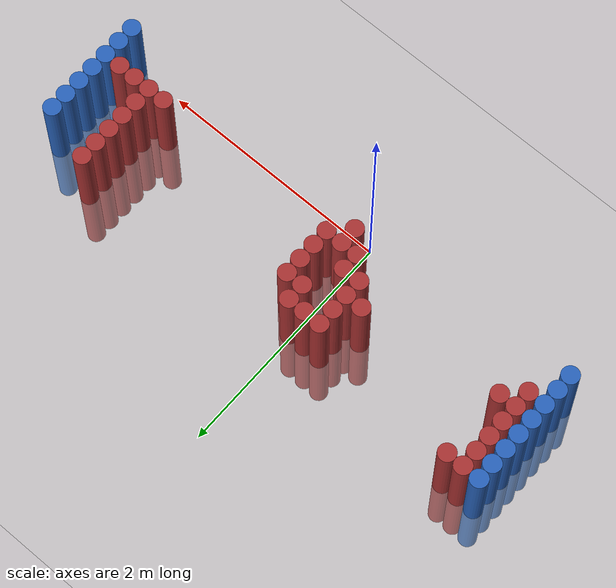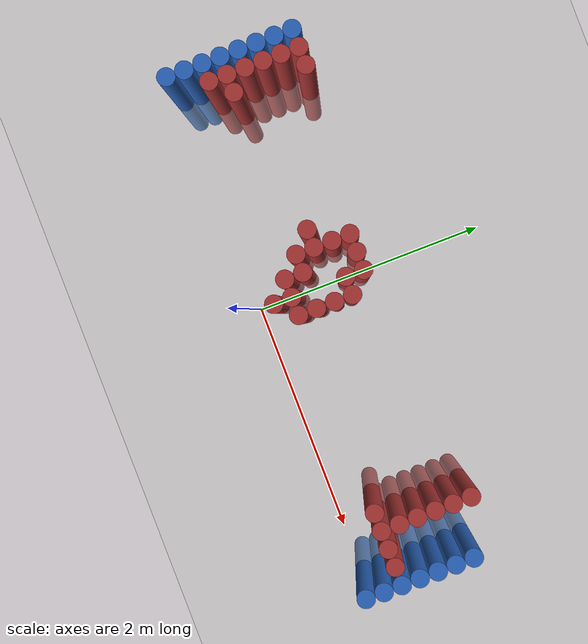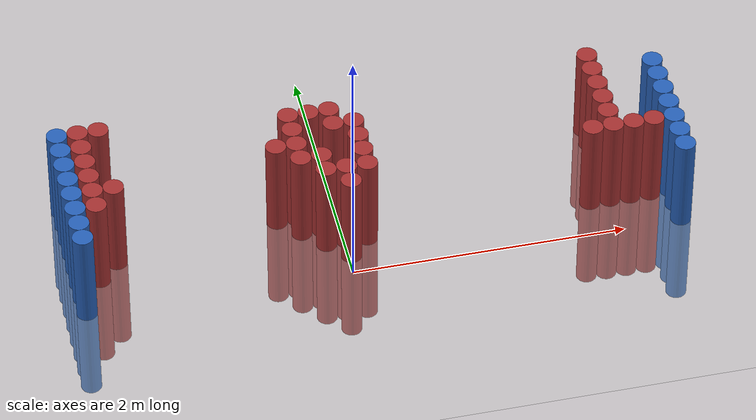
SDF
<sdf version="1.6">
 <world name="default">
  <model name="ground_plane">
   <static>1</static>
   <link name="link">
    <collision name="collision">
     <geometry><plane><normal>0 0 1</normal><size>100 100</size></plane></geometry>
     <surface><friction><ode><mu>100</mu><mu2>50</mu2></ode></friction></surface>
    </collision>
    <visual name="visual">
     <cast_shadows>0</cast_shadows>
     <geometry><plane><normal>0 0 1</normal><size>100 100</size></plane></geometry>
     <material>
      <script><uri>file://media/materials/scripts/gazebo.material</uri><name>Gazebo/Grey</name></script>
     </material>
    </visual>
   </link>
  </model>
  <model name="unit_cylinder_94">
   <static>1</static>
   <pose>2.425000 0.025000 0.000000 0.000000 0.000000 0.000000</pose>
   <link name="link">
    <inertial>
     <mass>1</mass>
     <inertia><ixx>0.145833</ixx><ixy>0</ixy><ixz>0</ixz><iyy>0.145833</iyy><iyz>0</iyz><izz>0.125</izz></inertia>
    </inertial>
    <collision name="collision">
     <geometry><cylinder><radius>0.075000</radius><length>1.5</length></cylinder></geometry>
    </collision>
    <visual name="visual">
     <geometry><cylinder><radius>0.075000</radius><length>1.5</length></cylinder></geometry>
     <material>
      <ambient>0.152000 0.379000 0.720000 1</ambient>
      <diffuse>0.152000 0.379000 0.720000 1</diffuse>
     </material>
     <material>
      <script><name>Gazebo/Grey</name><uri>file://media/materials/scripts/gazebo.material</uri></script>
     </material>
    </visual>
   </link>
  </model>
  <model name="unit_cylinder_95">
   <static>1</static>
   <pose>-1.925000 0.025000 0.000000 0.000000 0.000000 0.000000</pose>
   <link name="link">
    <inertial>
     <mass>1</mass>
     <inertia><ixx>0.145833</ixx><ixy>0</ixy><ixz>0</ixz><iyy>0.145833</iyy><iyz>0</iyz><izz>0.125</izz></inertia>
    </inertial>
    <collision name="collision">
     <geometry><cylinder><radius>0.075000</radius><length>1.5</length></cylinder></geometry>
    </collision>
    <visual name="visual">
     <geometry><cylinder><radius>0.075000</radius><length>1.5</length></cylinder></geometry>
     <material>
      <ambient>0.152000 0.379000 0.720000 1</ambient>
      <diffuse>0.152000 0.379000 0.720000 1</diffuse>
     </material>
     <material>
      <script><name>Gazebo/Grey</name><uri>file://media/materials/scripts/gazebo.material</uri></script>
     </material>
    </visual>
   </link>
  </model>
  <model name="unit_cylinder_96">
   <static>1</static>
   <pose>-1.925000 0.175000 0.000000 0.000000 0.000000 0.000000</pose>
   <link name="link">
    <inertial>
     <mass>1</mass>
     <inertia><ixx>0.145833</ixx><ixy>0</ixy><ixz>0</ixz><iyy>0.145833</iyy><iyz>0</iyz><izz>0.125</izz></inertia>
    </inertial>
    <collision name="collision">
     <geometry><cylinder><radius>0.075000</radius><length>1.5</length></cylinder></geometry>
    </collision>
    <visual name="visual">
     <geometry><cylinder><radius>0.075000</radius><length>1.5</length></cylinder></geometry>
     <material>
      <ambient>0.152000 0.379000 0.720000 1</ambient>
      <diffuse>0.152000 0.379000 0.720000 1</diffuse>
     </material>
     <material>
      <script><name>Gazebo/Grey</name><uri>file://media/materials/scripts/gazebo.material</uri></script>
     </material>
    </visual>
   </link>
  </model>
  <model name="unit_cylinder_97">
   <static>1</static>
   <pose>-1.925000 0.325000 0.000000 0.000000 0.000000 0.000000</pose>
   <link name="link">
    <inertial>
     <mass>1</mass>
     <inertia><ixx>0.145833</ixx><ixy>0</ixy><ixz>0</ixz><iyy>0.145833</iyy><iyz>0</iyz><izz>0.125</izz></inertia>
    </inertial>
    <collision name="collision">
     <geometry><cylinder><radius>0.075000</radius><length>1.5</length></cylinder></geometry>
    </collision>
    <visual name="visual">
     <geometry><cylinder><radius>0.075000</radius><length>1.5</length></cylinder></geometry>
     <material>
      <ambient>0.152000 0.379000 0.720000 1</ambient>
      <diffuse>0.152000 0.379000 0.720000 1</diffuse>
     </material>
     <material>
      <script><name>Gazebo/Grey</name><uri>file://media/materials/scripts/gazebo.material</uri></script>
     </material>
    </visual>
   </link>
  </model>
  <model name="unit_cylinder_98">
   <static>1</static>
   <pose>-1.925000 0.475000 0.000000 0.000000 0.000000 0.000000</pose>
   <link name="link">
    <inertial>
     <mass>1</mass>
     <inertia><ixx>0.145833</ixx><ixy>0</ixy><ixz>0</ixz><iyy>0.145833</iyy><iyz>0</iyz><izz>0.125</izz></inertia>
    </inertial>
    <collision name="collision">
     <geometry><cylinder><radius>0.075000</radius><length>1.5</length></cylinder></geometry>
    </collision>
    <visual name="visual">
     <geometry><cylinder><radius>0.075000</radius><length>1.5</length></cylinder></geometry>
     <material>
      <ambient>0.152000 0.379000 0.720000 1</ambient>
      <diffuse>0.152000 0.379000 0.720000 1</diffuse>
     </material>
     <material>
      <script><name>Gazebo/Grey</name><uri>file://media/materials/scripts/gazebo.material</uri></script>
     </material>
    </visual>
   </link>
  </model>
  <model name="unit_cylinder_99">
   <static>1</static>
   <pose>-1.925000 0.625000 0.000000 0.000000 0.000000 0.000000</pose>
   <link name="link">
    <inertial>
     <mass>1</mass>
     <inertia><ixx>0.145833</ixx><ixy>0</ixy><ixz>0</ixz><iyy>0.145833</iyy><iyz>0</iyz><izz>0.125</izz></inertia>
    </inertial>
    <collision name="collision">
     <geometry><cylinder><radius>0.075000</radius><length>1.5</length></cylinder></geometry>
    </collision>
    <visual name="visual">
     <geometry><cylinder><radius>0.075000</radius><length>1.5</length></cylinder></geometry>
     <material>
      <ambient>0.152000 0.379000 0.720000 1</ambient>
      <diffuse>0.152000 0.379000 0.720000 1</diffuse>
     </material>
     <material>
      <script><name>Gazebo/Grey</name><uri>file://media/materials/scripts/gazebo.material</uri></script>
     </material>
    </visual>
   </link>
  </model>
  <model name="unit_cylinder_100">
   <static>1</static>
   <pose>-1.925000 0.775000 0.000000 0.000000 0.000000 0.000000</pose>
   <link name="link">
    <inertial>
     <mass>1</mass>
     <inertia><ixx>0.145833</ixx><ixy>0</ixy><ixz>0</ixz><iyy>0.145833</iyy><iyz>0</iyz><izz>0.125</izz></inertia>
    </inertial>
    <collision name="collision">
     <geometry><cylinder><radius>0.075000</radius><length>1.5</length></cylinder></geometry>
    </collision>
    <visual name="visual">
     <geometry><cylinder><radius>0.075000</radius><length>1.5</length></cylinder></geometry>
     <material>
      <ambient>0.152000 0.379000 0.720000 1</ambient>
      <diffuse>0.152000 0.379000 0.720000 1</diffuse>
     </material>
     <material>
      <script><name>Gazebo/Grey</name><uri>file://media/materials/scripts/gazebo.material</uri></script>
     </material>
    </visual>
   </link>
  </model>
  <model name="unit_cylinder_101">
   <static>1</static>
   <pose>-1.925000 0.925000 0.000000 0.000000 0.000000 0.000000</pose>
   <link name="link">
    <inertial>
     <mass>1</mass>
     <inertia><ixx>0.145833</ixx><ixy>0</ixy><ixz>0</ixz><iyy>0.145833</iyy><iyz>0</iyz><izz>0.125</izz></inertia>
    </inertial>
    <collision name="collision">
     <geometry><cylinder><radius>0.075000</radius><length>1.5</length></cylinder></geometry>
    </collision>
    <visual name="visual">
     <geometry><cylinder><radius>0.075000</radius><length>1.5</length></cylinder></geometry>
     <material>
      <ambient>0.152000 0.379000 0.720000 1</ambient>
      <diffuse>0.152000 0.379000 0.720000 1</diffuse>
     </material>
     <material>
      <script><name>Gazebo/Grey</name><uri>file://media/materials/scripts/gazebo.material</uri></script>
     </material>
    </visual>
   </link>
  </model>
  <model name="unit_cylinder_102">
   <static>1</static>
   <pose>-1.925000 1.075000 0.000000 0.000000 0.000000 0.000000</pose>
   <link name="link">
    <inertial>
     <mass>1</mass>
     <inertia><ixx>0.145833</ixx><ixy>0</ixy><ixz>0</ixz><iyy>0.145833</iyy><iyz>0</iyz><izz>0.125</izz></inertia>
    </inertial>
    <collision name="collision">
     <geometry><cylinder><radius>0.075000</radius><length>1.5</length></cylinder></geometry>
    </collision>
    <visual name="visual">
     <geometry><cylinder><radius>0.075000</radius><length>1.5</length></cylinder></geometry>
     <material>
      <ambient>0.152000 0.379000 0.720000 1</ambient>
      <diffuse>0.152000 0.379000 0.720000 1</diffuse>
     </material>
     <material>
      <script><name>Gazebo/Grey</name><uri>file://media/materials/scripts/gazebo.material</uri></script>
     </material>
    </visual>
   </link>
  </model>
  <model name="unit_cylinder_126">
   <static>1</static>
   <pose>-1.775000 0.325000 0.000000 0.000000 0.000000 0.000000</pose>
   <link name="link">
    <inertial>
     <mass>1</mass>
     <inertia><ixx>0.145833</ixx><ixy>0</ixy><ixz>0</ixz><iyy>0.145833</iyy><iyz>0</iyz><izz>0.125</izz></inertia>
    </inertial>
    <collision name="collision">
     <geometry><cylinder><radius>0.075000</radius><length>1.5</length></cylinder></geometry>
    </collision>
    <visual name="visual">
     <geometry><cylinder><radius>0.075000</radius><length>1.5</length></cylinder></geometry>
     <material>
      <ambient>0.648000 0.192000 0.192000 1</ambient>
      <diffuse>0.648000 0.192000 0.192000 1</diffuse>
     </material>
     <material>
      <script><name>Gazebo/Grey</name><uri>file://media/materials/scripts/gazebo.material</uri></script>
     </material>
    </visual>
   </link>
  </model>
  <model name="unit_cylinder_127">
   <static>1</static>
   <pose>-1.775000 0.475000 0.000000 0.000000 0.000000 0.000000</pose>
   <link name="link">
    <inertial>
     <mass>1</mass>
     <inertia><ixx>0.145833</ixx><ixy>0</ixy><ixz>0</ixz><iyy>0.145833</iyy><iyz>0</iyz><izz>0.125</izz></inertia>
    </inertial>
    <collision name="collision">
     <geometry><cylinder><radius>0.075000</radius><length>1.5</length></cylinder></geometry>
    </collision>
    <visual name="visual">
     <geometry><cylinder><radius>0.075000</radius><length>1.5</length></cylinder></geometry>
     <material>
      <ambient>0.648000 0.192000 0.192000 1</ambient>
      <diffuse>0.648000 0.192000 0.192000 1</diffuse>
     </material>
     <material>
      <script><name>Gazebo/Grey</name><uri>file://media/materials/scripts/gazebo.material</uri></script>
     </material>
    </visual>
   </link>
  </model>
  <model name="unit_cylinder_128">
   <static>1</static>
   <pose>-1.775000 0.625000 0.000000 0.000000 0.000000 0.000000</pose>
   <link name="link">
    <inertial>
     <mass>1</mass>
     <inertia><ixx>0.145833</ixx><ixy>0</ixy><ixz>0</ixz><iyy>0.145833</iyy><iyz>0</iyz><izz>0.125</izz></inertia>
    </inertial>
    <collision name="collision">
     <geometry><cylinder><radius>0.075000</radius><length>1.5</length></cylinder></geometry>
    </collision>
    <visual name="visual">
     <geometry><cylinder><radius>0.075000</radius><length>1.5</length></cylinder></geometry>
     <material>
      <ambient>0.648000 0.192000 0.192000 1</ambient>
      <diffuse>0.648000 0.192000 0.192000 1</diffuse>
     </material>
     <material>
      <script><name>Gazebo/Grey</name><uri>file://media/materials/scripts/gazebo.material</uri></script>
     </material>
    </visual>
   </link>
  </model>
  <model name="unit_cylinder_129">
   <static>1</static>
   <pose>-1.775000 0.775000 0.000000 0.000000 0.000000 0.000000</pose>
   <link name="link">
    <inertial>
     <mass>1</mass>
     <inertia><ixx>0.145833</ixx><ixy>0</ixy><ixz>0</ixz><iyy>0.145833</iyy><iyz>0</iyz><izz>0.125</izz></inertia>
    </inertial>
    <collision name="collision">
     <geometry><cylinder><radius>0.075000</radius><length>1.5</length></cylinder></geometry>
    </collision>
    <visual name="visual">
     <geometry><cylinder><radius>0.075000</radius><length>1.5</length></cylinder></geometry>
     <material>
      <ambient>0.648000 0.192000 0.192000 1</ambient>
      <diffuse>0.648000 0.192000 0.192000 1</diffuse>
     </material>
     <material>
      <script><name>Gazebo/Grey</name><uri>file://media/materials/scripts/gazebo.material</uri></script>
     </material>
    </visual>
   </link>
  </model>
  <model name="unit_cylinder_130">
   <static>1</static>
   <pose>-1.775000 0.925000 0.000000 0.000000 0.000000 0.000000</pose>
   <link name="link">
    <inertial>
     <mass>1</mass>
     <inertia><ixx>0.145833</ixx><ixy>0</ixy><ixz>0</ixz><iyy>0.145833</iyy><iyz>0</iyz><izz>0.125</izz></inertia>
    </inertial>
    <collision name="collision">
     <geometry><cylinder><radius>0.075000</radius><length>1.5</length></cylinder></geometry>
    </collision>
    <visual name="visual">
     <geometry><cylinder><radius>0.075000</radius><length>1.5</length></cylinder></geometry>
     <material>
      <ambient>0.648000 0.192000 0.192000 1</ambient>
      <diffuse>0.648000 0.192000 0.192000 1</diffuse>
     </material>
     <material>
      <script><name>Gazebo/Grey</name><uri>file://media/materials/scripts/gazebo.material</uri></script>
     </material>
    </visual>
   </link>
  </model>
  <model name="unit_cylinder_131">
   <static>1</static>
   <pose>-1.775000 1.075000 0.000000 0.000000 0.000000 0.000000</pose>
   <link name="link">
    <inertial>
     <mass>1</mass>
     <inertia><ixx>0.145833</ixx><ixy>0</ixy><ixz>0</ixz><iyy>0.145833</iyy><iyz>0</iyz><izz>0.125</izz></inertia>
    </inertial>
    <collision name="collision">
     <geometry><cylinder><radius>0.075000</radius><length>1.5</length></cylinder></geometry>
    </collision>
    <visual name="visual">
     <geometry><cylinder><radius>0.075000</radius><length>1.5</length></cylinder></geometry>
     <material>
      <ambient>0.648000 0.192000 0.192000 1</ambient>
      <diffuse>0.648000 0.192000 0.192000 1</diffuse>
     </material>
     <material>
      <script><name>Gazebo/Grey</name><uri>file://media/materials/scripts/gazebo.material</uri></script>
     </material>
    </visual>
   </link>
  </model>
  <model name="unit_cylinder_150">
   <static>1</static>
   <pose>-1.625000 0.475000 0.000000 0.000000 0.000000 0.000000</pose>
   <link name="link">
    <inertial>
     <mass>1</mass>
     <inertia><ixx>0.145833</ixx><ixy>0</ixy><ixz>0</ixz><iyy>0.145833</iyy><iyz>0</iyz><izz>0.125</izz></inertia>
    </inertial>
    <collision name="collision">
     <geometry><cylinder><radius>0.075000</radius><length>1.5</length></cylinder></geometry>
    </collision>
    <visual name="visual">
     <geometry><cylinder><radius>0.075000</radius><length>1.5</length></cylinder></geometry>
     <material>
      <ambient>0.648000 0.192000 0.192000 1</ambient>
      <diffuse>0.648000 0.192000 0.192000 1</diffuse>
     </material>
     <material>
      <script><name>Gazebo/Grey</name><uri>file://media/materials/scripts/gazebo.material</uri></script>
     </material>
    </visual>
   </link>
  </model>
  <model name="unit_cylinder_151">
   <static>1</static>
   <pose>-1.625000 1.075000 0.000000 0.000000 0.000000 0.000000</pose>
   <link name="link">
    <inertial>
     <mass>1</mass>
     <inertia><ixx>0.145833</ixx><ixy>0</ixy><ixz>0</ixz><iyy>0.145833</iyy><iyz>0</iyz><izz>0.125</izz></inertia>
    </inertial>
    <collision name="collision">
     <geometry><cylinder><radius>0.075000</radius><length>1.5</length></cylinder></geometry>
    </collision>
    <visual name="visual">
     <geometry><cylinder><radius>0.075000</radius><length>1.5</length></cylinder></geometry>
     <material>
      <ambient>0.648000 0.192000 0.192000 1</ambient>
      <diffuse>0.648000 0.192000 0.192000 1</diffuse>
     </material>
     <material>
      <script><name>Gazebo/Grey</name><uri>file://media/materials/scripts/gazebo.material</uri></script>
     </material>
    </visual>
   </link>
  </model>
  <model name="unit_cylinder_169">
   <static>1</static>
   <pose>-0.425000 0.625000 0.000000 0.000000 0.000000 0.000000</pose>
   <link name="link">
    <inertial>
     <mass>1</mass>
     <inertia><ixx>0.145833</ixx><ixy>0</ixy><ixz>0</ixz><iyy>0.145833</iyy><iyz>0</iyz><izz>0.125</izz></inertia>
    </inertial>
    <collision name="collision">
     <geometry><cylinder><radius>0.075000</radius><length>1.5</length></cylinder></geometry>
    </collision>
    <visual name="visual">
     <geometry><cylinder><radius>0.075000</radius><length>1.5</length></cylinder></geometry>
     <material>
      <ambient>0.648000 0.192000 0.192000 1</ambient>
      <diffuse>0.648000 0.192000 0.192000 1</diffuse>
     </material>
     <material>
      <script><name>Gazebo/Grey</name><uri>file://media/materials/scripts/gazebo.material</uri></script>
     </material>
    </visual>
   </link>
  </model>
  <model name="unit_cylinder_170">
   <static>1</static>
   <pose>-0.275000 0.475000 0.000000 0.000000 0.000000 0.000000</pose>
   <link name="link">
    <inertial>
     <mass>1</mass>
     <inertia><ixx>0.145833</ixx><ixy>0</ixy><ixz>0</ixz><iyy>0.145833</iyy><iyz>0</iyz><izz>0.125</izz></inertia>
    </inertial>
    <collision name="collision">
     <geometry><cylinder><radius>0.075000</radius><length>1.5</length></cylinder></geometry>
    </collision>
    <visual name="visual">
     <geometry><cylinder><radius>0.075000</radius><length>1.5</length></cylinder></geometry>
     <material>
      <ambient>0.648000 0.192000 0.192000 1</ambient>
      <diffuse>0.648000 0.192000 0.192000 1</diffuse>
     </material>
     <material>
      <script><name>Gazebo/Grey</name><uri>file://media/materials/scripts/gazebo.material</uri></script>
     </material>
    </visual>
   </link>
  </model>
  <model name="unit_cylinder_171">
   <static>1</static>
   <pose>-0.275000 0.625000 0.000000 0.000000 0.000000 0.000000</pose>
   <link name="link">
    <inertial>
     <mass>1</mass>
     <inertia><ixx>0.145833</ixx><ixy>0</ixy><ixz>0</ixz><iyy>0.145833</iyy><iyz>0</iyz><izz>0.125</izz></inertia>
    </inertial>
    <collision name="collision">
     <geometry><cylinder><radius>0.075000</radius><length>1.5</length></cylinder></geometry>
    </collision>
    <visual name="visual">
     <geometry><cylinder><radius>0.075000</radius><length>1.5</length></cylinder></geometry>
     <material>
      <ambient>0.648000 0.192000 0.192000 1</ambient>
      <diffuse>0.648000 0.192000 0.192000 1</diffuse>
     </material>
     <material>
      <script><name>Gazebo/Grey</name><uri>file://media/materials/scripts/gazebo.material</uri></script>
     </material>
    </visual>
   </link>
  </model>
  <model name="unit_cylinder_172">
   <static>1</static>
   <pose>-0.275000 0.775000 0.000000 0.000000 0.000000 0.000000</pose>
   <link name="link">
    <inertial>
     <mass>1</mass>
     <inertia><ixx>0.145833</ixx><ixy>0</ixy><ixz>0</ixz><iyy>0.145833</iyy><iyz>0</iyz><izz>0.125</izz></inertia>
    </inertial>
    <collision name="collision">
     <geometry><cylinder><radius>0.075000</radius><length>1.5</length></cylinder></geometry>
    </collision>
    <visual name="visual">
     <geometry><cylinder><radius>0.075000</radius><length>1.5</length></cylinder></geometry>
     <material>
      <ambient>0.648000 0.192000 0.192000 1</ambient>
      <diffuse>0.648000 0.192000 0.192000 1</diffuse>
     </material>
     <material>
      <script><name>Gazebo/Grey</name><uri>file://media/materials/scripts/gazebo.material</uri></script>
     </material>
    </visual>
   </link>
  </model>
  <model name="unit_cylinder_173">
   <static>1</static>
   <pose>-0.275000 0.925000 0.000000 0.000000 0.000000 0.000000</pose>
   <link name="link">
    <inertial>
     <mass>1</mass>
     <inertia><ixx>0.145833</ixx><ixy>0</ixy><ixz>0</ixz><iyy>0.145833</iyy><iyz>0</iyz><izz>0.125</izz></inertia>
    </inertial>
    <collision name="collision">
     <geometry><cylinder><radius>0.075000</radius><length>1.5</length></cylinder></geometry>
    </collision>
    <visual name="visual">
     <geometry><cylinder><radius>0.075000</radius><length>1.5</length></cylinder></geometry>
     <material>
      <ambient>0.648000 0.192000 0.192000 1</ambient>
      <diffuse>0.648000 0.192000 0.192000 1</diffuse>
     </material>
     <material>
      <script><name>Gazebo/Grey</name><uri>file://media/materials/scripts/gazebo.material</uri></script>
     </material>
    </visual>
   </link>
  </model>
  <model name="unit_cylinder_174">
   <static>1</static>
   <pose>-0.125000 0.325000 0.000000 0.000000 0.000000 0.000000</pose>
   <link name="link">
    <inertial>
     <mass>1</mass>
     <inertia><ixx>0.145833</ixx><ixy>0</ixy><ixz>0</ixz><iyy>0.145833</iyy><iyz>0</iyz><izz>0.125</izz></inertia>
    </inertial>
    <collision name="collision">
     <geometry><cylinder><radius>0.075000</radius><length>1.5</length></cylinder></geometry>
    </collision>
    <visual name="visual">
     <geometry><cylinder><radius>0.075000</radius><length>1.5</length></cylinder></geometry>
     <material>
      <ambient>0.648000 0.192000 0.192000 1</ambient>
      <diffuse>0.648000 0.192000 0.192000 1</diffuse>
     </material>
     <material>
      <script><name>Gazebo/Grey</name><uri>file://media/materials/scripts/gazebo.material</uri></script>
     </material>
    </visual>
   </link>
  </model>
  <model name="unit_cylinder_175">
   <static>1</static>
   <pose>-0.125000 0.475000 0.000000 0.000000 0.000000 0.000000</pose>
   <link name="link">
    <inertial>
     <mass>1</mass>
     <inertia><ixx>0.145833</ixx><ixy>0</ixy><ixz>0</ixz><iyy>0.145833</iyy><iyz>0</iyz><izz>0.125</izz></inertia>
    </inertial>
    <collision name="collision">
     <geometry><cylinder><radius>0.075000</radius><length>1.5</length></cylinder></geometry>
    </collision>
    <visual name="visual">
     <geometry><cylinder><radius>0.075000</radius><length>1.5</length></cylinder></geometry>
     <material>
      <ambient>0.648000 0.192000 0.192000 1</ambient>
      <diffuse>0.648000 0.192000 0.192000 1</diffuse>
     </material>
     <material>
      <script><name>Gazebo/Grey</name><uri>file://media/materials/scripts/gazebo.material</uri></script>
     </material>
    </visual>
   </link>
  </model>
  <model name="unit_cylinder_176">
   <static>1</static>
   <pose>-0.125000 0.925000 0.000000 0.000000 0.000000 0.000000</pose>
   <link name="link">
    <inertial>
     <mass>1</mass>
     <inertia><ixx>0.145833</ixx><ixy>0</ixy><ixz>0</ixz><iyy>0.145833</iyy><iyz>0</iyz><izz>0.125</izz></inertia>
    </inertial>
    <collision name="collision">
     <geometry><cylinder><radius>0.075000</radius><length>1.5</length></cylinder></geometry>
    </collision>
    <visual name="visual">
     <geometry><cylinder><radius>0.075000</radius><length>1.5</length></cylinder></geometry>
     <material>
      <ambient>0.648000 0.192000 0.192000 1</ambient>
      <diffuse>0.648000 0.192000 0.192000 1</diffuse>
     </material>
     <material>
      <script><name>Gazebo/Grey</name><uri>file://media/materials/scripts/gazebo.material</uri></script>
     </material>
    </visual>
   </link>
  </model>
  <model name="unit_cylinder_181">
   <static>1</static>
   <pose>0.025000 0.175000 0.000000 0.000000 0.000000 0.000000</pose>
   <link name="link">
    <inertial>
     <mass>1</mass>
     <inertia><ixx>0.145833</ixx><ixy>0</ixy><ixz>0</ixz><iyy>0.145833</iyy><iyz>0</iyz><izz>0.125</izz></inertia>
    </inertial>
    <collision name="collision">
     <geometry><cylinder><radius>0.075000</radius><length>1.5</length></cylinder></geometry>
    </collision>
    <visual name="visual">
     <geometry><cylinder><radius>0.075000</radius><length>1.5</length></cylinder></geometry>
     <material>
      <ambient>0.648000 0.192000 0.192000 1</ambient>
      <diffuse>0.648000 0.192000 0.192000 1</diffuse>
     </material>
     <material>
      <script><name>Gazebo/Grey</name><uri>file://media/materials/scripts/gazebo.material</uri></script>
     </material>
    </visual>
   </link>
  </model>
  <model name="unit_cylinder_182">
   <static>1</static>
   <pose>0.025000 0.325000 0.000000 0.000000 0.000000 0.000000</pose>
   <link name="link">
    <inertial>
     <mass>1</mass>
     <inertia><ixx>0.145833</ixx><ixy>0</ixy><ixz>0</ixz><iyy>0.145833</iyy><iyz>0</iyz><izz>0.125</izz></inertia>
    </inertial>
    <collision name="collision">
     <geometry><cylinder><radius>0.075000</radius><length>1.5</length></cylinder></geometry>
    </collision>
    <visual name="visual">
     <geometry><cylinder><radius>0.075000</radius><length>1.5</length></cylinder></geometry>
     <material>
      <ambient>0.648000 0.192000 0.192000 1</ambient>
      <diffuse>0.648000 0.192000 0.192000 1</diffuse>
     </material>
     <material>
      <script><name>Gazebo/Grey</name><uri>file://media/materials/scripts/gazebo.material</uri></script>
     </material>
    </visual>
   </link>
  </model>
  <model name="unit_cylinder_183">
   <static>1</static>
   <pose>0.025000 0.775000 0.000000 0.000000 0.000000 0.000000</pose>
   <link name="link">
    <inertial>
     <mass>1</mass>
     <inertia><ixx>0.145833</ixx><ixy>0</ixy><ixz>0</ixz><iyy>0.145833</iyy><iyz>0</iyz><izz>0.125</izz></inertia>
    </inertial>
    <collision name="collision">
     <geometry><cylinder><radius>0.075000</radius><length>1.5</length></cylinder></geometry>
    </collision>
    <visual name="visual">
     <geometry><cylinder><radius>0.075000</radius><length>1.5</length></cylinder></geometry>
     <material>
      <ambient>0.648000 0.192000 0.192000 1</ambient>
      <diffuse>0.648000 0.192000 0.192000 1</diffuse>
     </material>
     <material>
      <script><name>Gazebo/Grey</name><uri>file://media/materials/scripts/gazebo.material</uri></script>
     </material>
    </visual>
   </link>
  </model>
  <model name="unit_cylinder_184">
   <static>1</static>
   <pose>0.025000 0.925000 0.000000 0.000000 0.000000 0.000000</pose>
   <link name="link">
    <inertial>
     <mass>1</mass>
     <inertia><ixx>0.145833</ixx><ixy>0</ixy><ixz>0</ixz><iyy>0.145833</iyy><iyz>0</iyz><izz>0.125</izz></inertia>
    </inertial>
    <collision name="collision">
     <geometry><cylinder><radius>0.075000</radius><length>1.5</length></cylinder></geometry>
    </collision>
    <visual name="visual">
     <geometry><cylinder><radius>0.075000</radius><length>1.5</length></cylinder></geometry>
     <material>
      <ambient>0.648000 0.192000 0.192000 1</ambient>
      <diffuse>0.648000 0.192000 0.192000 1</diffuse>
     </material>
     <material>
      <script><name>Gazebo/Grey</name><uri>file://media/materials/scripts/gazebo.material</uri></script>
     </material>
    </visual>
   </link>
  </model>
  <model name="unit_cylinder_187">
   <static>1</static>
   <pose>0.175000 0.325000 0.000000 0.000000 0.000000 0.000000</pose>
   <link name="link">
    <inertial>
     <mass>1</mass>
     <inertia><ixx>0.145833</ixx><ixy>0</ixy><ixz>0</ixz><iyy>0.145833</iyy><iyz>0</iyz><izz>0.125</izz></inertia>
    </inertial>
    <collision name="collision">
     <geometry><cylinder><radius>0.075000</radius><length>1.5</length></cylinder></geometry>
    </collision>
    <visual name="visual">
     <geometry><cylinder><radius>0.075000</radius><length>1.5</length></cylinder></geometry>
     <material>
      <ambient>0.648000 0.192000 0.192000 1</ambient>
      <diffuse>0.648000 0.192000 0.192000 1</diffuse>
     </material>
     <material>
      <script><name>Gazebo/Grey</name><uri>file://media/materials/scripts/gazebo.material</uri></script>
     </material>
    </visual>
   </link>
  </model>
  <model name="unit_cylinder_188">
   <static>1</static>
   <pose>0.175000 0.475000 0.000000 0.000000 0.000000 0.000000</pose>
   <link name="link">
    <inertial>
     <mass>1</mass>
     <inertia><ixx>0.145833</ixx><ixy>0</ixy><ixz>0</ixz><iyy>0.145833</iyy><iyz>0</iyz><izz>0.125</izz></inertia>
    </inertial>
    <collision name="collision">
     <geometry><cylinder><radius>0.075000</radius><length>1.5</length></cylinder></geometry>
    </collision>
    <visual name="visual">
     <geometry><cylinder><radius>0.075000</radius><length>1.5</length></cylinder></geometry>
     <material>
      <ambient>0.648000 0.192000 0.192000 1</ambient>
      <diffuse>0.648000 0.192000 0.192000 1</diffuse>
     </material>
     <material>
      <script><name>Gazebo/Grey</name><uri>file://media/materials/scripts/gazebo.material</uri></script>
     </material>
    </visual>
   </link>
  </model>
  <model name="unit_cylinder_189">
   <static>1</static>
   <pose>0.175000 0.625000 0.000000 0.000000 0.000000 0.000000</pose>
   <link name="link">
    <inertial>
     <mass>1</mass>
     <inertia><ixx>0.145833</ixx><ixy>0</ixy><ixz>0</ixz><iyy>0.145833</iyy><iyz>0</iyz><izz>0.125</izz></inertia>
    </inertial>
    <collision name="collision">
     <geometry><cylinder><radius>0.075000</radius><length>1.5</length></cylinder></geometry>
    </collision>
    <visual name="visual">
     <geometry><cylinder><radius>0.075000</radius><length>1.5</length></cylinder></geometry>
     <material>
      <ambient>0.648000 0.192000 0.192000 1</ambient>
      <diffuse>0.648000 0.192000 0.192000 1</diffuse>
     </material>
     <material>
      <script><name>Gazebo/Grey</name><uri>file://media/materials/scripts/gazebo.material</uri></script>
     </material>
    </visual>
   </link>
  </model>
  <model name="unit_cylinder_190">
   <static>1</static>
   <pose>0.175000 0.775000 0.000000 0.000000 0.000000 0.000000</pose>
   <link name="link">
    <inertial>
     <mass>1</mass>
     <inertia><ixx>0.145833</ixx><ixy>0</ixy><ixz>0</ixz><iyy>0.145833</iyy><iyz>0</iyz><izz>0.125</izz></inertia>
    </inertial>
    <collision name="collision">
     <geometry><cylinder><radius>0.075000</radius><length>1.5</length></cylinder></geometry>
    </collision>
    <visual name="visual">
     <geometry><cylinder><radius>0.075000</radius><length>1.5</length></cylinder></geometry>
     <material>
      <ambient>0.648000 0.192000 0.192000 1</ambient>
      <diffuse>0.648000 0.192000 0.192000 1</diffuse>
     </material>
     <material>
      <script><name>Gazebo/Grey</name><uri>file://media/materials/scripts/gazebo.material</uri></script>
     </material>
    </visual>
   </link>
  </model>
  <model name="unit_cylinder_209">
   <static>1</static>
   <pose>1.825000 0.325000 0.000000 0.000000 0.000000 0.000000</pose>
   <link name="link">
    <inertial>
     <mass>1</mass>
     <inertia><ixx>0.145833</ixx><ixy>0</ixy><ixz>0</ixz><iyy>0.145833</iyy><iyz>0</iyz><izz>0.125</izz></inertia>
    </inertial>
    <collision name="collision">
     <geometry><cylinder><radius>0.075000</radius><length>1.5</length></cylinder></geometry>
    </collision>
    <visual name="visual">
     <geometry><cylinder><radius>0.075000</radius><length>1.5</length></cylinder></geometry>
     <material>
      <ambient>0.648000 0.192000 0.192000 1</ambient>
      <diffuse>0.648000 0.192000 0.192000 1</diffuse>
     </material>
     <material>
      <script><name>Gazebo/Grey</name><uri>file://media/materials/scripts/gazebo.material</uri></script>
     </material>
    </visual>
   </link>
  </model>
  <model name="unit_cylinder_217">
   <static>1</static>
   <pose>1.975000 0.325000 0.000000 0.000000 0.000000 0.000000</pose>
   <link name="link">
    <inertial>
     <mass>1</mass>
     <inertia><ixx>0.145833</ixx><ixy>0</ixy><ixz>0</ixz><iyy>0.145833</iyy><iyz>0</iyz><izz>0.125</izz></inertia>
    </inertial>
    <collision name="collision">
     <geometry><cylinder><radius>0.075000</radius><length>1.5</length></cylinder></geometry>
    </collision>
    <visual name="visual">
     <geometry><cylinder><radius>0.075000</radius><length>1.5</length></cylinder></geometry>
     <material>
      <ambient>0.648000 0.192000 0.192000 1</ambient>
      <diffuse>0.648000 0.192000 0.192000 1</diffuse>
     </material>
     <material>
      <script><name>Gazebo/Grey</name><uri>file://media/materials/scripts/gazebo.material</uri></script>
     </material>
    </visual>
   </link>
  </model>
  <model name="unit_cylinder_218">
   <static>1</static>
   <pose>1.975000 0.475000 0.000000 0.000000 0.000000 0.000000</pose>
   <link name="link">
    <inertial>
     <mass>1</mass>
     <inertia><ixx>0.145833</ixx><ixy>0</ixy><ixz>0</ixz><iyy>0.145833</iyy><iyz>0</iyz><izz>0.125</izz></inertia>
    </inertial>
    <collision name="collision">
     <geometry><cylinder><radius>0.075000</radius><length>1.5</length></cylinder></geometry>
    </collision>
    <visual name="visual">
     <geometry><cylinder><radius>0.075000</radius><length>1.5</length></cylinder></geometry>
     <material>
      <ambient>0.648000 0.192000 0.192000 1</ambient>
      <diffuse>0.648000 0.192000 0.192000 1</diffuse>
     </material>
     <material>
      <script><name>Gazebo/Grey</name><uri>file://media/materials/scripts/gazebo.material</uri></script>
     </material>
    </visual>
   </link>
  </model>
  <model name="unit_cylinder_219">
   <static>1</static>
   <pose>1.975000 0.625000 0.000000 0.000000 0.000000 0.000000</pose>
   <link name="link">
    <inertial>
     <mass>1</mass>
     <inertia><ixx>0.145833</ixx><ixy>0</ixy><ixz>0</ixz><iyy>0.145833</iyy><iyz>0</iyz><izz>0.125</izz></inertia>
    </inertial>
    <collision name="collision">
     <geometry><cylinder><radius>0.075000</radius><length>1.5</length></cylinder></geometry>
    </collision>
    <visual name="visual">
     <geometry><cylinder><radius>0.075000</radius><length>1.5</length></cylinder></geometry>
     <material>
      <ambient>0.648000 0.192000 0.192000 1</ambient>
      <diffuse>0.648000 0.192000 0.192000 1</diffuse>
     </material>
     <material>
      <script><name>Gazebo/Grey</name><uri>file://media/materials/scripts/gazebo.material</uri></script>
     </material>
    </visual>
   </link>
  </model>
  <model name="unit_cylinder_220">
   <static>1</static>
   <pose>1.975000 0.775000 0.000000 0.000000 0.000000 0.000000</pose>
   <link name="link">
    <inertial>
     <mass>1</mass>
     <inertia><ixx>0.145833</ixx><ixy>0</ixy><ixz>0</ixz><iyy>0.145833</iyy><iyz>0</iyz><izz>0.125</izz></inertia>
    </inertial>
    <collision name="collision">
     <geometry><cylinder><radius>0.075000</radius><length>1.5</length></cylinder></geometry>
    </collision>
    <visual name="visual">
     <geometry><cylinder><radius>0.075000</radius><length>1.5</length></cylinder></geometry>
     <material>
      <ambient>0.648000 0.192000 0.192000 1</ambient>
      <diffuse>0.648000 0.192000 0.192000 1</diffuse>
     </material>
     <material>
      <script><name>Gazebo/Grey</name><uri>file://media/materials/scripts/gazebo.material</uri></script>
     </material>
    </visual>
   </link>
  </model>
  <model name="unit_cylinder_221">
   <static>1</static>
   <pose>1.975000 0.925000 0.000000 0.000000 0.000000 0.000000</pose>
   <link name="link">
    <inertial>
     <mass>1</mass>
     <inertia><ixx>0.145833</ixx><ixy>0</ixy><ixz>0</ixz><iyy>0.145833</iyy><iyz>0</iyz><izz>0.125</izz></inertia>
    </inertial>
    <collision name="collision">
     <geometry><cylinder><radius>0.075000</radius><length>1.5</length></cylinder></geometry>
    </collision>
    <visual name="visual">
     <geometry><cylinder><radius>0.075000</radius><length>1.5</length></cylinder></geometry>
     <material>
      <ambient>0.648000 0.192000 0.192000 1</ambient>
      <diffuse>0.648000 0.192000 0.192000 1</diffuse>
     </material>
     <material>
      <script><name>Gazebo/Grey</name><uri>file://media/materials/scripts/gazebo.material</uri></script>
     </material>
    </visual>
   </link>
  </model>
  <model name="unit_cylinder_222">
   <static>1</static>
   <pose>1.975000 1.075000 0.000000 0.000000 0.000000 0.000000</pose>
   <link name="link">
    <inertial>
     <mass>1</mass>
     <inertia><ixx>0.145833</ixx><ixy>0</ixy><ixz>0</ixz><iyy>0.145833</iyy><iyz>0</iyz><izz>0.125</izz></inertia>
    </inertial>
    <collision name="collision">
     <geometry><cylinder><radius>0.075000</radius><length>1.5</length></cylinder></geometry>
    </collision>
    <visual name="visual">
     <geometry><cylinder><radius>0.075000</radius><length>1.5</length></cylinder></geometry>
     <material>
      <ambient>0.648000 0.192000 0.192000 1</ambient>
      <diffuse>0.648000 0.192000 0.192000 1</diffuse>
     </material>
     <material>
      <script><name>Gazebo/Grey</name><uri>file://media/materials/scripts/gazebo.material</uri></script>
     </material>
    </visual>
   </link>
  </model>
  <model name="unit_cylinder_235">
   <static>1</static>
   <pose>2.125000 0.325000 0.000000 0.000000 0.000000 0.000000</pose>
   <link name="link">
    <inertial>
     <mass>1</mass>
     <inertia><ixx>0.145833</ixx><ixy>0</ixy><ixz>0</ixz><iyy>0.145833</iyy><iyz>0</iyz><izz>0.125</izz></inertia>
    </inertial>
    <collision name="collision">
     <geometry><cylinder><radius>0.075000</radius><length>1.5</length></cylinder></geometry>
    </collision>
    <visual name="visual">
     <geometry><cylinder><radius>0.075000</radius><length>1.5</length></cylinder></geometry>
     <material>
      <ambient>0.648000 0.192000 0.192000 1</ambient>
      <diffuse>0.648000 0.192000 0.192000 1</diffuse>
     </material>
     <material>
      <script><name>Gazebo/Grey</name><uri>file://media/materials/scripts/gazebo.material</uri></script>
     </material>
    </visual>
   </link>
  </model>
  <model name="unit_cylinder_246">
   <static>1</static>
   <pose>2.275000 0.325000 0.000000 0.000000 0.000000 0.000000</pose>
   <link name="link">
    <inertial>
     <mass>1</mass>
     <inertia><ixx>0.145833</ixx><ixy>0</ixy><ixz>0</ixz><iyy>0.145833</iyy><iyz>0</iyz><izz>0.125</izz></inertia>
    </inertial>
    <collision name="collision">
     <geometry><cylinder><radius>0.075000</radius><length>1.5</length></cylinder></geometry>
    </collision>
    <visual name="visual">
     <geometry><cylinder><radius>0.075000</radius><length>1.5</length></cylinder></geometry>
     <material>
      <ambient>0.648000 0.192000 0.192000 1</ambient>
      <diffuse>0.648000 0.192000 0.192000 1</diffuse>
     </material>
     <material>
      <script><name>Gazebo/Grey</name><uri>file://media/materials/scripts/gazebo.material</uri></script>
     </material>
    </visual>
   </link>
  </model>
  <model name="unit_cylinder_255">
   <static>1</static>
   <pose>2.425000 0.175000 0.000000 0.000000 0.000000 0.000000</pose>
   <link name="link">
    <inertial>
     <mass>1</mass>
     <inertia><ixx>0.145833</ixx><ixy>0</ixy><ixz>0</ixz><iyy>0.145833</iyy><iyz>0</iyz><izz>0.125</izz></inertia>
    </inertial>
    <collision name="collision">
     <geometry><cylinder><radius>0.075000</radius><length>1.5</length></cylinder></geometry>
    </collision>
    <visual name="visual">
     <geometry><cylinder><radius>0.075000</radius><length>1.5</length></cylinder></geometry>
     <material>
      <ambient>0.152000 0.379000 0.720000 1</ambient>
      <diffuse>0.152000 0.379000 0.720000 1</diffuse>
     </material>
     <material>
      <script><name>Gazebo/Grey</name><uri>file://media/materials/scripts/gazebo.material</uri></script>
     </material>
    </visual>
   </link>
  </model>
  <model name="unit_cylinder_256">
   <static>1</static>
   <pose>2.425000 0.325000 0.000000 0.000000 0.000000 0.000000</pose>
   <link name="link">
    <inertial>
     <mass>1</mass>
     <inertia><ixx>0.145833</ixx><ixy>0</ixy><ixz>0</ixz><iyy>0.145833</iyy><iyz>0</iyz><izz>0.125</izz></inertia>
    </inertial>
    <collision name="collision">
     <geometry><cylinder><radius>0.075000</radius><length>1.5</length></cylinder></geometry>
    </collision>
    <visual name="visual">
     <geometry><cylinder><radius>0.075000</radius><length>1.5</length></cylinder></geometry>
     <material>
      <ambient>0.152000 0.379000 0.720000 1</ambient>
      <diffuse>0.152000 0.379000 0.720000 1</diffuse>
     </material>
     <material>
      <script><name>Gazebo/Grey</name><uri>file://media/materials/scripts/gazebo.material</uri></script>
     </material>
    </visual>
   </link>
  </model>
  <model name="unit_cylinder_257">
   <static>1</static>
   <pose>2.425000 0.475000 0.000000 0.000000 0.000000 0.000000</pose>
   <link name="link">
    <inertial>
     <mass>1</mass>
     <inertia><ixx>0.145833</ixx><ixy>0</ixy><ixz>0</ixz><iyy>0.145833</iyy><iyz>0</iyz><izz>0.125</izz></inertia>
    </inertial>
    <collision name="collision">
     <geometry><cylinder><radius>0.075000</radius><length>1.5</length></cylinder></geometry>
    </collision>
    <visual name="visual">
     <geometry><cylinder><radius>0.075000</radius><length>1.5</length></cylinder></geometry>
     <material>
      <ambient>0.152000 0.379000 0.720000 1</ambient>
      <diffuse>0.152000 0.379000 0.720000 1</diffuse>
     </material>
     <material>
      <script><name>Gazebo/Grey</name><uri>file://media/materials/scripts/gazebo.material</uri></script>
     </material>
    </visual>
   </link>
  </model>
  <model name="unit_cylinder_258">
   <static>1</static>
   <pose>2.425000 0.625000 0.000000 0.000000 0.000000 0.000000</pose>
   <link name="link">
    <inertial>
     <mass>1</mass>
     <inertia><ixx>0.145833</ixx><ixy>0</ixy><ixz>0</ixz><iyy>0.145833</iyy><iyz>0</iyz><izz>0.125</izz></inertia>
    </inertial>
    <collision name="collision">
     <geometry><cylinder><radius>0.075000</radius><length>1.5</length></cylinder></geometry>
    </collision>
    <visual name="visual">
     <geometry><cylinder><radius>0.075000</radius><length>1.5</length></cylinder></geometry>
     <material>
      <ambient>0.152000 0.379000 0.720000 1</ambient>
      <diffuse>0.152000 0.379000 0.720000 1</diffuse>
     </material>
     <material>
      <script><name>Gazebo/Grey</name><uri>file://media/materials/scripts/gazebo.material</uri></script>
     </material>
    </visual>
   </link>
  </model>
  <model name="unit_cylinder_259">
   <static>1</static>
   <pose>2.425000 0.775000 0.000000 0.000000 0.000000 0.000000</pose>
   <link name="link">
    <inertial>
     <mass>1</mass>
     <inertia><ixx>0.145833</ixx><ixy>0</ixy><ixz>0</ixz><iyy>0.145833</iyy><iyz>0</iyz><izz>0.125</izz></inertia>
    </inertial>
    <collision name="collision">
     <geometry><cylinder><radius>0.075000</radius><length>1.5</length></cylinder></geometry>
    </collision>
    <visual name="visual">
     <geometry><cylinder><radius>0.075000</radius><length>1.5</length></cylinder></geometry>
     <material>
      <ambient>0.152000 0.379000 0.720000 1</ambient>
      <diffuse>0.152000 0.379000 0.720000 1</diffuse>
     </material>
     <material>
      <script><name>Gazebo/Grey</name><uri>file://media/materials/scripts/gazebo.material</uri></script>
     </material>
    </visual>
   </link>
  </model>
  <model name="unit_cylinder_260">
   <static>1</static>
   <pose>2.425000 0.925000 0.000000 0.000000 0.000000 0.000000</pose>
   <link name="link">
    <inertial>
     <mass>1</mass>
     <inertia><ixx>0.145833</ixx><ixy>0</ixy><ixz>0</ixz><iyy>0.145833</iyy><iyz>0</iyz><izz>0.125</izz></inertia>
    </inertial>
    <collision name="collision">
     <geometry><cylinder><radius>0.075000</radius><length>1.5</length></cylinder></geometry>
    </collision>
    <visual name="visual">
     <geometry><cylinder><radius>0.075000</radius><length>1.5</length></cylinder></geometry>
     <material>
      <ambient>0.152000 0.379000 0.720000 1</ambient>
      <diffuse>0.152000 0.379000 0.720000 1</diffuse>
     </material>
     <material>
      <script><name>Gazebo/Grey</name><uri>file://media/materials/scripts/gazebo.material</uri></script>
     </material>
    </visual>
   </link>
  </model>
 </world>
</sdf>
